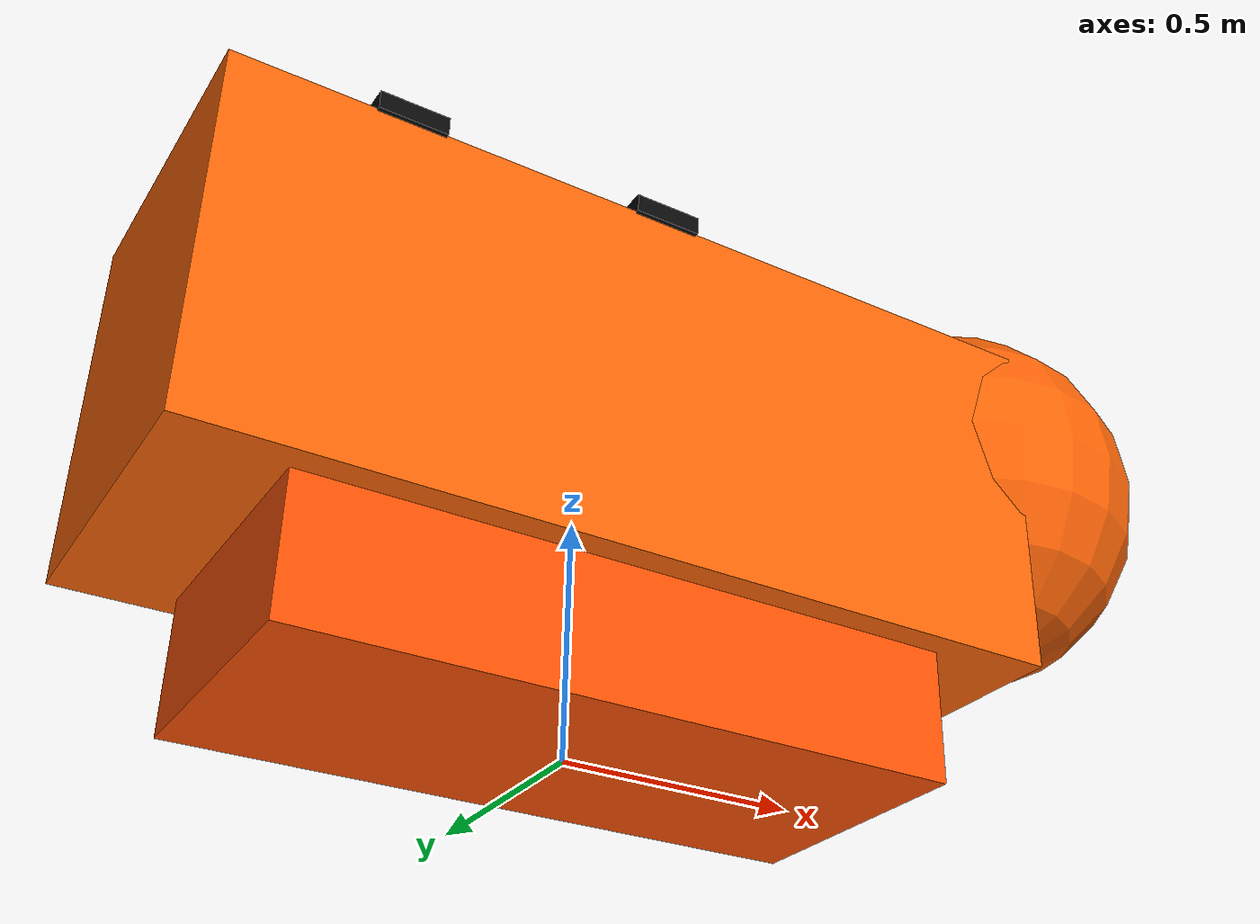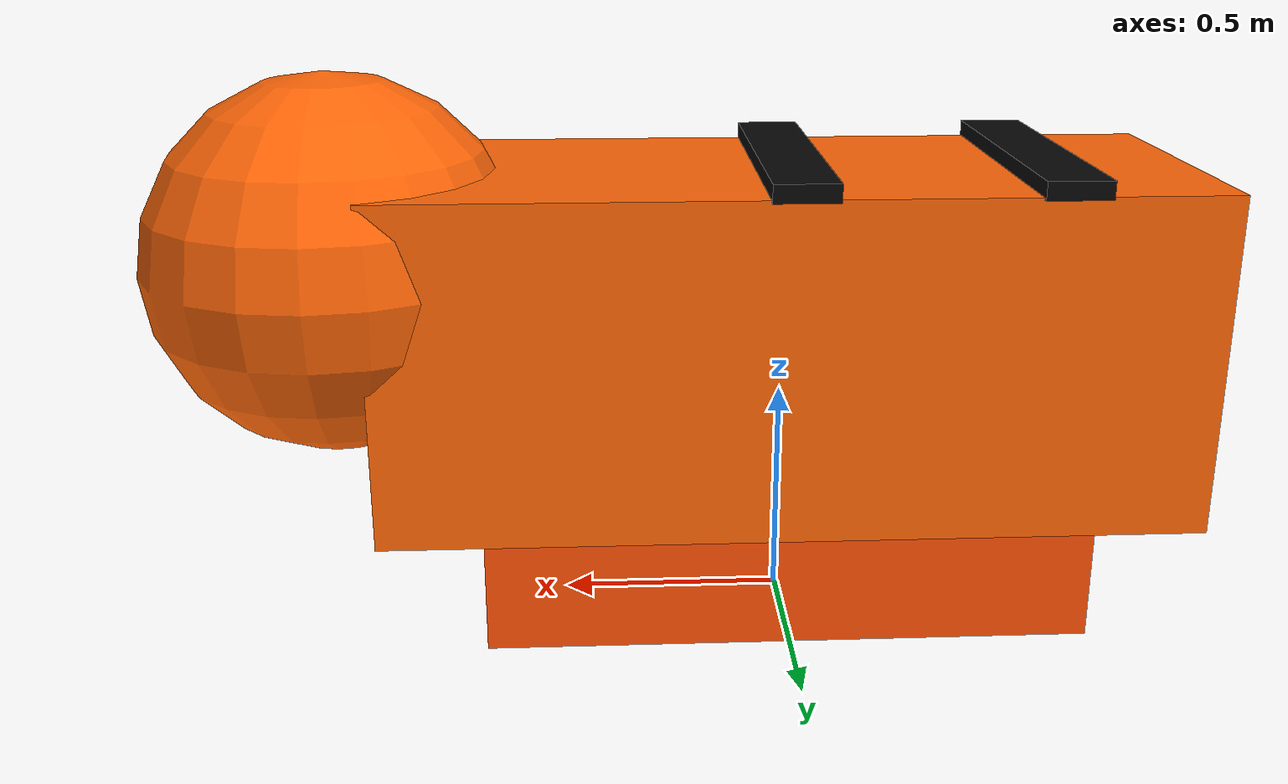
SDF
<?xml version="1.0"?>
<sdf version="1.9">
  <model name="tiger">
    <static>true</static>
    <link name="body">
      <visual name="torso">
        <pose>0 0 0.65 0 0 0</pose>
        <geometry><box><size>1.8 0.7 0.75</size></box></geometry>
        <material><ambient>1 0.32 0.02 1</ambient><diffuse>1 0.4 0.03 1</diffuse></material>
      </visual>
      <visual name="head">
        <pose>1.0 0 0.82 0 0 0</pose>
        <geometry><sphere><radius>0.42</radius></sphere></geometry>
        <material><ambient>1 0.32 0.02 1</ambient><diffuse>1 0.4 0.03 1</diffuse></material>
      </visual>
      <visual name="stripe_center">
        <pose>0 0 1.04 0 0 0</pose>
        <geometry><box><size>0.14 0.72 0.04</size></box></geometry>
        <material><ambient>0.03 0.03 0.03 1</ambient><diffuse>0.03 0.03 0.03 1</diffuse></material>
      </visual>
      <visual name="stripe_back">
        <pose>-0.55 0 1.04 0 0 0</pose>
        <geometry><box><size>0.14 0.72 0.04</size></box></geometry>
        <material><ambient>0.03 0.03 0.03 1</ambient><diffuse>0.03 0.03 0.03 1</diffuse></material>
      </visual>
      <visual name="legs">
        <pose>0 0 0.25 0 0 0</pose>
        <geometry><box><size>1.35 0.58 0.5</size></box></geometry>
        <material><ambient>0.9 0.25 0.01 1</ambient><diffuse>1 0.32 0.02 1</diffuse></material>
      </visual>
    </link>
  </model>
</sdf>
